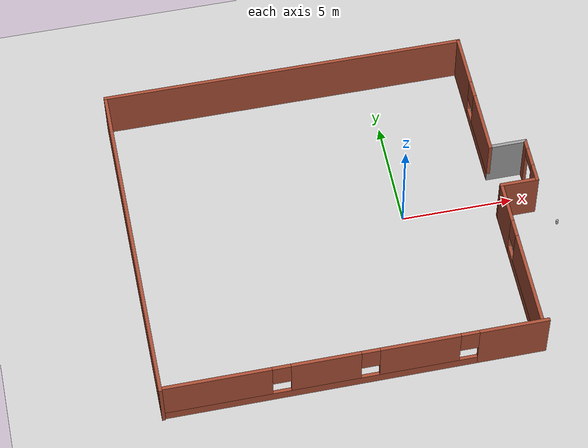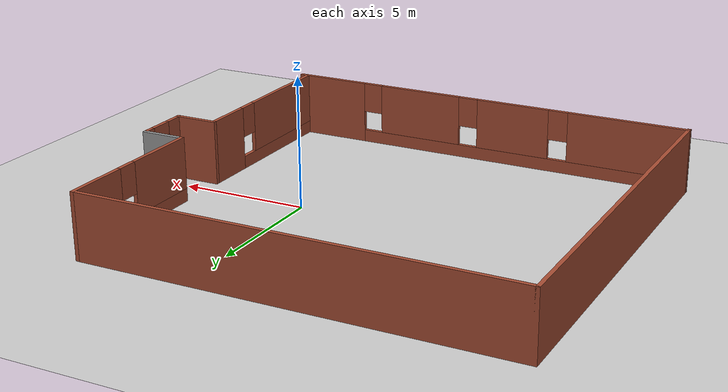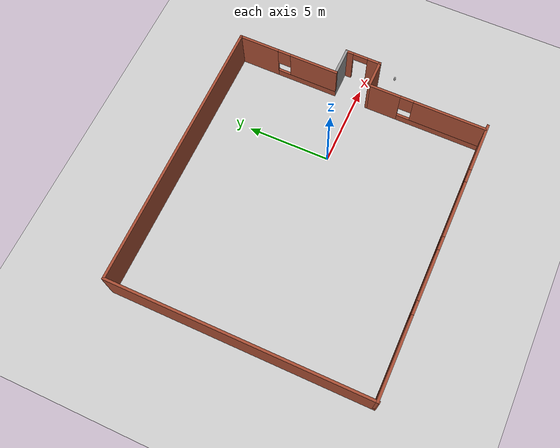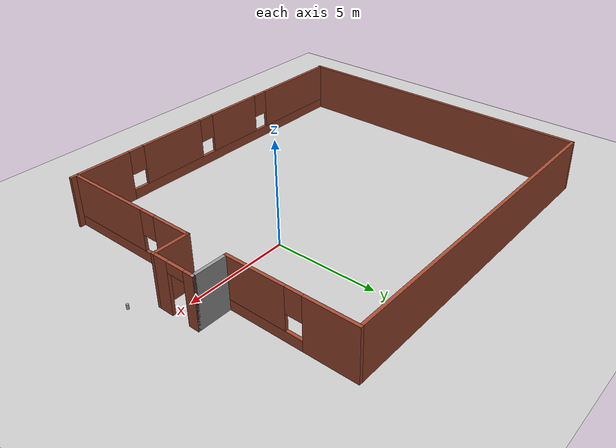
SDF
<sdf version="1.7">
 <world name="default">
  <light name="sun" type="directional">
   <pose>0 0 10 0 -0 0</pose>
   <diffuse>0.8 0.8 0.8 1</diffuse>
   <specular>0.2 0.2 0.2 1</specular>
   <attenuation>
    <range>1000</range>
    <constant>0.9</constant>
    <linear>0.01</linear>
    <quadratic>0.001</quadratic>
   </attenuation>
   <direction>-0.5 0.1 -0.9</direction>
   <spot><inner_angle>0</inner_angle><outer_angle>0</outer_angle><falloff>0</falloff></spot>
  </light>
  <model name="ground_plane">
   <static>1</static>
   <link name="link">
    <collision name="collision">
     <geometry><plane><normal>0 0 1</normal><size>100 100</size></plane></geometry>
     <surface>
      <contact><collide_bitmask>65535</collide_bitmask></contact>
      <friction><ode><mu>100</mu><mu2>50</mu2></ode></friction>
     </surface>
    </collision>
    <visual name="visual">
     <cast_shadows>0</cast_shadows>
     <geometry><plane><normal>0 0 1</normal><size>100 100</size></plane></geometry>
     <material>
      <script><uri>file://media/materials/scripts/gazebo.material</uri><name>Gazebo/Grey</name></script>
     </material>
    </visual>
   </link>
  </model>
  <gravity>0 0 -9.8</gravity>
  <magnetic_field>6e-06 2.3e-05 -4.2e-05</magnetic_field>
  <atmosphere type="adiabatic"/>
  <physics type="ode">
   <max_step_size>0.001</max_step_size>
   <real_time_factor>1</real_time_factor>
   <real_time_update_rate>1000</real_time_update_rate>
  </physics>
  <scene><ambient>0.4 0.4 0.4 1</ambient><background>0.7 0.7 0.7 1</background><shadows>1</shadows></scene>
  <audio><device>default</device></audio>
  <spherical_coordinates>
   <surface_model>EARTH_WGS84</surface_model>
   <latitude_deg>0</latitude_deg>
   <longitude_deg>0</longitude_deg>
   <elevation>0</elevation>
   <heading_deg>0</heading_deg>
  </spherical_coordinates>
  <model name="beer">
   <link name="link">
    <pose>0 0 0.115 0 -0 0</pose>
    <inertial>
     <mass>0.39</mass>
     <inertia><ixx>0.00058</ixx><ixy>0</ixy><ixz>0</ixz><iyy>0.00058</iyy><iyz>0</iyz><izz>0.00019</izz></inertia>
    </inertial>
    <collision name="collision">
     <geometry><cylinder><radius>0.055</radius><length>0.23</length></cylinder></geometry>
    </collision>
    <visual name="visual">
     <geometry><cylinder><radius>0.055</radius><length>0.23</length></cylinder></geometry>
     <material>
      <script>
       <uri>model://beer/materials/scripts</uri>
       <uri>model://beer/materials/textures</uri>
       <name>Beer/Diffuse</name>
      </script>
     </material>
    </visual>
   </link>
   <pose>6.69538 -1.61679 -2e-06 1e-06 -0 -1e-05</pose>
  </model>
  <model name="WareHouseV1">
   <pose>-3.16088 -0.20739 0 0 -0 0</pose>
   <link name="Wall_10">
    <pose>-0.675 -7.625 0 0 -0 3.14159</pose>
    <visual name="Wall_10_Visual_0">
     <pose>-6.84686 0 1.25 0 -0 0</pose>
     <geometry><box><size>3.05629 0.15 2.5</size></box></geometry>
     <material>
      <script><uri>file://media/materials/scripts/gazebo.material</uri><name>Gazebo/Bricks</name></script>
      <ambient>1 1 1 1</ambient>
     </material>
     <meta><layer>0</layer></meta>
    </visual>
    <collision name="Wall_10_Collision_0">
     <geometry><box><size>3.05629 0.15 2.5</size></box></geometry>
     <pose>-6.84686 0 1.25 0 -0 0</pose>
    </collision>
    <visual name="Wall_10_Visual_1">
     <pose>1.52814 0 0.25 0 -0 0</pose>
     <geometry><box><size>13.6937 0.15 0.5</size></box></geometry>
     <material>
      <script><uri>file://media/materials/scripts/gazebo.material</uri><name>Gazebo/Bricks</name></script>
      <ambient>1 1 1 1</ambient>
     </material>
     <meta><layer>0</layer></meta>
    </visual>
    <collision name="Wall_10_Collision_1">
     <geometry><box><size>13.6937 0.15 0.5</size></box></geometry>
     <pose>1.52814 0 0.25 0 -0 0</pose>
    </collision>
    <visual name="Wall_10_Visual_2">
     <pose>-2.77861 0 1.5 0 -0 0</pose>
     <geometry><box><size>3.4802 0.15 2</size></box></geometry>
     <material>
      <script><uri>file://media/materials/scripts/gazebo.material</uri><name>Gazebo/Bricks</name></script>
      <ambient>1 1 1 1</ambient>
     </material>
     <meta><layer>0</layer></meta>
    </visual>
    <collision name="Wall_10_Collision_2">
     <geometry><box><size>3.4802 0.15 2</size></box></geometry>
     <pose>-2.77861 0 1.5 0 -0 0</pose>
    </collision>
    <visual name="Wall_10_Visual_3">
     <pose>1.26897 0 1.5 0 -0 0</pose>
     <geometry><box><size>3.01496 0.15 2</size></box></geometry>
     <material>
      <script><uri>file://media/materials/scripts/gazebo.material</uri><name>Gazebo/Bricks</name></script>
      <ambient>1 1 1 1</ambient>
     </material>
     <meta><layer>0</layer></meta>
    </visual>
    <collision name="Wall_10_Collision_3">
     <geometry><box><size>3.01496 0.15 2</size></box></geometry>
     <pose>1.26897 0 1.5 0 -0 0</pose>
    </collision>
    <visual name="Wall_10_Visual_4">
     <pose>5.97572 0 1.5 0 -0 0</pose>
     <geometry><box><size>4.79855 0.15 2</size></box></geometry>
     <material>
      <script><uri>file://media/materials/scripts/gazebo.material</uri><name>Gazebo/Bricks</name></script>
      <ambient>1 1 1 1</ambient>
     </material>
     <meta><layer>0</layer></meta>
    </visual>
    <collision name="Wall_10_Collision_4">
     <geometry><box><size>4.79855 0.15 2</size></box></geometry>
     <pose>5.97572 0 1.5 0 -0 0</pose>
    </collision>
    <visual name="Wall_10_Visual_5">
     <pose>-4.91871 0 1.9 0 -0 0</pose>
     <geometry><box><size>0.8 0.15 1.2</size></box></geometry>
     <material>
      <script><uri>file://media/materials/scripts/gazebo.material</uri><name>Gazebo/Bricks</name></script>
      <ambient>1 1 1 1</ambient>
     </material>
     <meta><layer>0</layer></meta>
    </visual>
    <collision name="Wall_10_Collision_5">
     <geometry><box><size>0.8 0.15 1.2</size></box></geometry>
     <pose>-4.91871 0 1.9 0 -0 0</pose>
    </collision>
    <visual name="Wall_10_Visual_6">
     <pose>-0.638513 0 1.9 0 -0 0</pose>
     <geometry><box><size>0.8 0.15 1.2</size></box></geometry>
     <material>
      <script><uri>file://media/materials/scripts/gazebo.material</uri><name>Gazebo/Bricks</name></script>
      <ambient>1 1 1 1</ambient>
     </material>
     <meta><layer>0</layer></meta>
    </visual>
    <collision name="Wall_10_Collision_6">
     <geometry><box><size>0.8 0.15 1.2</size></box></geometry>
     <pose>-0.638513 0 1.9 0 -0 0</pose>
    </collision>
    <visual name="Wall_10_Visual_7">
     <pose>3.17645 0 1.9 0 -0 0</pose>
     <geometry><box><size>0.8 0.15 1.2</size></box></geometry>
     <material>
      <script><uri>file://media/materials/scripts/gazebo.material</uri><name>Gazebo/Bricks</name></script>
      <ambient>1 1 1 1</ambient>
     </material>
     <meta><layer>0</layer></meta>
    </visual>
    <collision name="Wall_10_Collision_7">
     <geometry><box><size>0.8 0.15 1.2</size></box></geometry>
     <pose>3.17645 0 1.9 0 -0 0</pose>
    </collision>
   </link>
   <link name="Wall_13">
    <collision name="Wall_13_Collision">
     <geometry><box><size>1.75 0.15 2.5</size></box></geometry>
     <pose>0 0 1.25 0 -0 0</pose>
    </collision>
    <visual name="Wall_13_Visual">
     <pose>0 0 1.25 0 -0 0</pose>
     <geometry><box><size>1.75 0.15 2.5</size></box></geometry>
     <material>
      <script><uri>file://media/materials/scripts/gazebo.material</uri><name>Gazebo/Bricks</name></script>
      <ambient>1 1 1 1</ambient>
     </material>
     <meta><layer>0</layer></meta>
    </visual>
    <pose>8.175 -0.525 0 0 -0 3.14159</pose>
   </link>
   <link name="Wall_14">
    <pose>7.375 -4.075 0 0 -0 -1.5708</pose>
    <visual name="Wall_14_Visual_0">
     <pose>-2.62283 0 1.25 0 -0 0</pose>
     <geometry><box><size>2.00433 0.15 2.5</size></box></geometry>
     <material>
      <script><uri>file://media/materials/scripts/gazebo.material</uri><name>Gazebo/Bricks</name></script>
      <ambient>1 1 1 1</ambient>
     </material>
     <meta><layer>0</layer></meta>
    </visual>
    <collision name="Wall_14_Collision_0">
     <geometry><box><size>2.00433 0.15 2.5</size></box></geometry>
     <pose>-2.62283 0 1.25 0 -0 0</pose>
    </collision>
    <visual name="Wall_14_Visual_1">
     <pose>1.00216 0 0.25 0 -0 0</pose>
     <geometry><box><size>5.24567 0.15 0.5</size></box></geometry>
     <material>
      <script><uri>file://media/materials/scripts/gazebo.material</uri><name>Gazebo/Bricks</name></script>
      <ambient>1 1 1 1</ambient>
     </material>
     <meta><layer>0</layer></meta>
    </visual>
    <collision name="Wall_14_Collision_1">
     <geometry><box><size>5.24567 0.15 0.5</size></box></geometry>
     <pose>1.00216 0 0.25 0 -0 0</pose>
    </collision>
    <visual name="Wall_14_Visual_2">
     <pose>1.40217 0 1.5 0 -0 0</pose>
     <geometry><box><size>4.44567 0.15 2</size></box></geometry>
     <material>
      <script><uri>file://media/materials/scripts/gazebo.material</uri><name>Gazebo/Bricks</name></script>
      <ambient>1 1 1 1</ambient>
     </material>
     <meta><layer>0</layer></meta>
    </visual>
    <collision name="Wall_14_Collision_2">
     <geometry><box><size>4.44567 0.15 2</size></box></geometry>
     <pose>1.40217 0 1.5 0 -0 0</pose>
    </collision>
    <visual name="Wall_14_Visual_3">
     <pose>-1.22067 0 1.9 0 -0 0</pose>
     <geometry><box><size>0.8 0.15 1.2</size></box></geometry>
     <material>
      <script><uri>file://media/materials/scripts/gazebo.material</uri><name>Gazebo/Bricks</name></script>
      <ambient>1 1 1 1</ambient>
     </material>
     <meta><layer>0</layer></meta>
    </visual>
    <collision name="Wall_14_Collision_3">
     <geometry><box><size>0.8 0.15 1.2</size></box></geometry>
     <pose>-1.22067 0 1.9 0 -0 0</pose>
    </collision>
   </link>
   <link name="Wall_2">
    <collision name="Wall_2_Collision">
     <geometry><box><size>15.5 0.15 2.5</size></box></geometry>
     <pose>0 0 1.25 0 -0 0</pose>
    </collision>
    <visual name="Wall_2_Visual">
     <pose>0 0 1.25 0 -0 0</pose>
     <geometry><box><size>15.5 0.15 2.5</size></box></geometry>
     <material>
      <script><uri>file://media/materials/scripts/gazebo.material</uri><name>Gazebo/Bricks</name></script>
      <ambient>1 1 1 1</ambient>
     </material>
     <meta><layer>0</layer></meta>
    </visual>
    <pose>-8.975 -0 0 0 -0 1.5708</pose>
   </link>
   <link name="Wall_3">
    <collision name="Wall_3_Collision">
     <geometry><box><size>16.5 0.15 2.5</size></box></geometry>
     <pose>0 0 1.25 0 -0 0</pose>
    </collision>
    <visual name="Wall_3_Visual">
     <pose>0 0 1.25 0 -0 0</pose>
     <geometry><box><size>16.5 0.15 2.5</size></box></geometry>
     <material>
      <script><uri>file://media/materials/scripts/gazebo.material</uri><name>Gazebo/Bricks</name></script>
      <ambient>1 1 1 1</ambient>
     </material>
     <meta><layer>0</layer></meta>
    </visual>
    <pose>-0.8 7.675 0 0 -0 0</pose>
   </link>
   <link name="Wall_4">
    <pose>7.375 4.625 0 0 -0 -1.5708</pose>
    <visual name="Wall_4_Visual_0">
     <pose>-1.87502 0 1.25 0 -0 0</pose>
     <geometry><box><size>2.49997 0.15 2.5</size></box></geometry>
     <material>
      <script><uri>file://media/materials/scripts/gazebo.material</uri><name>Gazebo/Bricks</name></script>
      <ambient>1 1 1 1</ambient>
     </material>
     <meta><layer>0</layer></meta>
    </visual>
    <collision name="Wall_4_Collision_0">
     <geometry><box><size>2.49997 0.15 2.5</size></box></geometry>
     <pose>-1.87502 0 1.25 0 -0 0</pose>
    </collision>
    <visual name="Wall_4_Visual_1">
     <pose>1.24998 0 0.25 0 -0 0</pose>
     <geometry><box><size>3.75003 0.15 0.5</size></box></geometry>
     <material>
      <script><uri>file://media/materials/scripts/gazebo.material</uri><name>Gazebo/Bricks</name></script>
      <ambient>1 1 1 1</ambient>
     </material>
     <meta><layer>0</layer></meta>
    </visual>
    <collision name="Wall_4_Collision_1">
     <geometry><box><size>3.75003 0.15 0.5</size></box></geometry>
     <pose>1.24998 0 0.25 0 -0 0</pose>
    </collision>
    <visual name="Wall_4_Visual_2">
     <pose>1.64999 0 1.5 0 -0 0</pose>
     <geometry><box><size>2.95003 0.15 2</size></box></geometry>
     <material>
      <script><uri>file://media/materials/scripts/gazebo.material</uri><name>Gazebo/Bricks</name></script>
      <ambient>1 1 1 1</ambient>
     </material>
     <meta><layer>0</layer></meta>
    </visual>
    <collision name="Wall_4_Collision_2">
     <geometry><box><size>2.95003 0.15 2</size></box></geometry>
     <pose>1.64999 0 1.5 0 -0 0</pose>
    </collision>
    <visual name="Wall_4_Visual_3">
     <pose>-0.22503 0 1.9 0 -0 0</pose>
     <geometry><box><size>0.8 0.15 1.2</size></box></geometry>
     <material>
      <script><uri>file://media/materials/scripts/gazebo.material</uri><name>Gazebo/Bricks</name></script>
      <ambient>1 1 1 1</ambient>
     </material>
     <meta><layer>0</layer></meta>
    </visual>
    <collision name="Wall_4_Collision_3">
     <geometry><box><size>0.8 0.15 1.2</size></box></geometry>
     <pose>-0.22503 0 1.9 0 -0 0</pose>
    </collision>
   </link>
   <link name="Wall_5">
    <collision name="Wall_5_Collision">
     <geometry><box><size>1.75 0.15 2.5</size></box></geometry>
     <pose>0 0 1.25 0 -0 0</pose>
    </collision>
    <visual name="Wall_5_Visual">
     <pose>0 0 1.25 0 -0 0</pose>
     <geometry><box><size>1.75 0.15 2.5</size></box></geometry>
     <material>
      <script><uri>file://media/materials/scripts/gazebo.material</uri><name>Gazebo/Grey</name></script>
      <ambient>1 1 1 1</ambient>
     </material>
     <meta><layer>0</layer></meta>
    </visual>
    <pose>8.175 1.575 0 0 -0 0</pose>
   </link>
   <link name="Wall_7">
    <pose>8.975 0.525 0 0 -0 -1.5708</pose>
    <visual name="Wall_7_Visual_0">
     <pose>-0.864103 0 1.25 0 -0 0</pose>
     <geometry><box><size>0.521794 0.15 2.5</size></box></geometry>
     <material>
      <script><uri>file://media/materials/scripts/gazebo.material</uri><name>Gazebo/Bricks</name></script>
      <ambient>1 1 1 1</ambient>
     </material>
     <meta><layer>0</layer></meta>
    </visual>
    <collision name="Wall_7_Collision_0">
     <geometry><box><size>0.521794 0.15 2.5</size></box></geometry>
     <pose>-0.864103 0 1.25 0 -0 0</pose>
    </collision>
    <visual name="Wall_7_Visual_1">
     <pose>0.710897 0 1.25 0 -0 0</pose>
     <geometry><box><size>0.828206 0.15 2.5</size></box></geometry>
     <material>
      <script><uri>file://media/materials/scripts/gazebo.material</uri><name>Gazebo/Bricks</name></script>
      <ambient>1 1 1 1</ambient>
     </material>
     <meta><layer>0</layer></meta>
    </visual>
    <collision name="Wall_7_Collision_1">
     <geometry><box><size>0.828206 0.15 2.5</size></box></geometry>
     <pose>0.710897 0 1.25 0 -0 0</pose>
    </collision>
    <visual name="Wall_7_Visual_2">
     <pose>-0.153206 0 2.25 0 -0 0</pose>
     <geometry><box><size>0.9 0.15 0.5</size></box></geometry>
     <material>
      <script><uri>file://media/materials/scripts/gazebo.material</uri><name>Gazebo/Bricks</name></script>
      <ambient>1 1 1 1</ambient>
     </material>
     <meta><layer>0</layer></meta>
    </visual>
    <collision name="Wall_7_Collision_2">
     <geometry><box><size>0.9 0.15 0.5</size></box></geometry>
     <pose>-0.153206 0 2.25 0 -0 0</pose>
    </collision>
   </link>
   <static>1</static>
  </model>
 </world>
</sdf>
